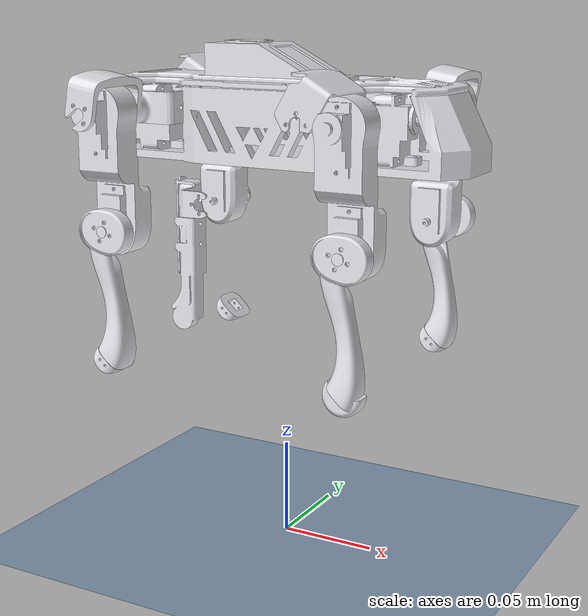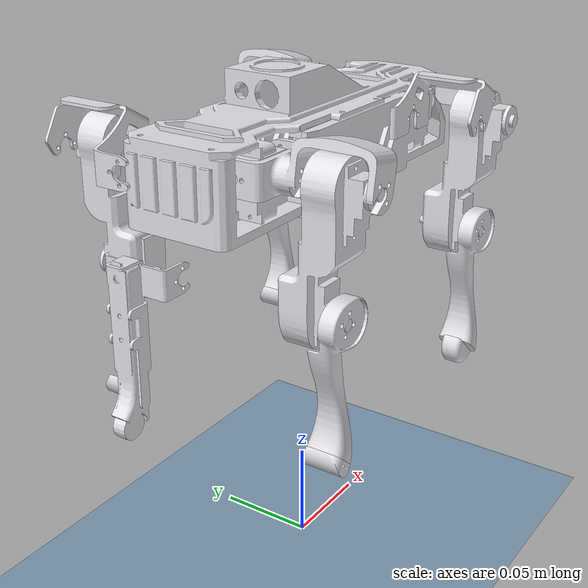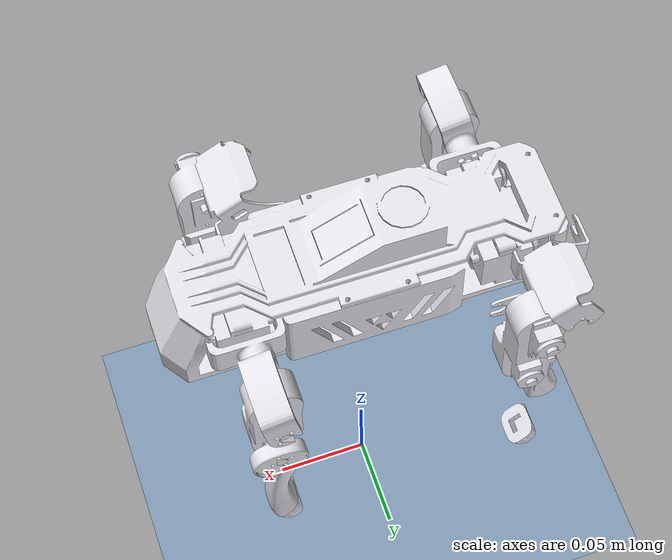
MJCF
<mujoco model="sdog">
  <compiler angle="radian" meshdir="../meshes"/>
  <size njmax="500" nconmax="100" />
  <option gravity='0 0 -9.806' iterations='50' solver='Newton' timestep='0.002'/>
  <default>
        <geom contype="1" conaffinity="1" friction="0.6 0.3 0.3" rgba="0.5 0.6 0.7 1" margin="0.001" group="0"/>
        <light castshadow="false" diffuse="1 1 1"/>
        <motor ctrlrange="-33.5 33.5" ctrllimited="true"/>
        <camera fovy="60"/>
        <joint damping="0.05" armature="0.01" frictionloss="0.05"/>
  </default>
  <asset>
    <mesh name="base" file="base.STL"/>
    <mesh name="body" file="body.STL"/>
    <mesh name="fr_hip" file="fr_hip.STL"/>
    <mesh name="fr_thigh" file="fr_thigh.STL"/>
    <mesh name="fr_calf" file="fr_calf.STL"/>
    <mesh name="fr_foot" file="fr_foot.STL"/>
    <mesh name="fl_hip" file="fl_hip.STL"/>
    <mesh name="fl_thigh" file="fl_thigh.STL"/>
    <mesh name="fl_calf" file="fl_calf.STL"/>
    <mesh name="fl_foot" file="fl_foot.STL"/>
    <mesh name="br_hip" file="br_hip.STL"/>
    <mesh name="br_thigh" file="br_thigh.STL"/>
    <mesh name="br_calf" file="br_calf.STL"/>
    <mesh name="br_foot" file="br_foot.STL"/>
    <mesh name="bl_hip" file="bl_hip.STL"/>
    <mesh name="bl_thigh" file="bl_thigh.STL"/>
    <mesh name="bl_calf" file="bl_calf.STL"/>
    <mesh name="bl_foot" file="bl_foot.STL"/>
    <texture type="skybox" builtin="gradient" rgb1=".3 .5 .7" rgb2="0 0 0" width="512" height="512"/>
    <texture name="grid" type="2d" builtin="checker" width="512" height="512" rgb1=".1 .2 .3" rgb2=".2 .3 .4"/>
    <material name="grid" texture="grid" texrepeat="1 1" texuniform="true" reflectance=".2"/>
  </asset>

  <worldbody>
    <geom name="floor" pos="0 0 0" size="0 0 0.05" type="plane" material="grid" condim="3"/>
    <light name="spotlight" mode="fixed" pos="0 0 3" dir="0 0 -1" diffuse=".8 .8 .8" specular=".3 .3 .3" cutoff="100" exponent="30"/>
    <light castshadow="false" directional="true" diffuse=".3 .3 .3" specular="0.3 0.3 0.3" pos="-1 -1 1" dir="1 1 -1"/>
    <light directional="true" diffuse=".3 .3 .3" specular="0.3 0.3 0.3" pos="1 -1 1" dir="-1 1 -1"/>
    <light castshadow="false" directional="true" diffuse=".3 .3 .3" specular="0.3 0.3 0.3" pos="0 1 1" dir="0 -1 -1"/>
    <body name="trunk" pos="0 0 0.23">
      <freejoint name="root"/>
      <geom type="mesh" rgba="0.89804 0.91765 0.92941 1" mesh="base"/>
      <geom type="mesh" rgba="0.8902 0.8902 0.91373 1" mesh="body"/>
      <body name="fr_hip" pos="0.062526 -0.02085 0">
        <inertial pos="0.0023257 -0.025249 0.0055137" quat="0.557125 0.417005 -0.429525 0.575523" mass="0.01059" diaginertia="4.59415e-06 4.13295e-06 1.2864e-06"/>
        <joint name="fr_hip_joint" pos="0 0 0" axis="1 0 0" range="-0.8 0.8" actuatorfrcrange="-0.45 0.45"/>
        <geom type="mesh" rgba="0.8902 0.8902 0.91373 1" mesh="fr_hip"/>
        <body name="fr_thigh" pos="0.00031911 -0.03686 0">
          <inertial pos="-5.894e-05 0.0027005 -0.028881" quat="0.993505 0.113762 0.000832863 -0.00225745" mass="0.045112" diaginertia="1.7194e-05 1.71342e-05 3.52919e-06"/>
          <joint name="fr_thigh_joint" pos="0 0 0" axis="0 1 0" range="-1 2" actuatorfrcrange="-0.45 0.45"/>
          <geom type="mesh" rgba="0.8902 0.8902 0.91373 1" mesh="fr_thigh"/>
          <body name="fr_calf" pos="-1.4535e-05 0 -0.059049">
            <inertial pos="0.000214756 -0.00127643 -0.0394026" quat="0.758783 0.0217934 -0.0312341 0.650229" mass="0.014489" diaginertia="9.26291e-06 9.11254e-06 6.36044e-07"/>
            <joint name="fr_calf_joint" pos="0 0 0" axis="0 1 0" range="-2.69 -0.5" actuatorfrcrange="-0.45 0.45"/>
            <geom type="mesh" rgba="0.8902 0.8902 0.91373 1" mesh="fr_calf"/>
            <geom pos="0 0 -0.065878" quat="1 0 0 0" type="mesh" rgba="0.8902 0.8902 0.91373 1" mesh="fr_foot"/>
          </body>
        </body>
      </body>
      <body name="fl_hip" pos="0.062526 0.020224 0">
        <inertial pos="0.00232573 0.025876 0.00551368" quat="0.417008 0.557126 -0.57552 0.429525" mass="0.0105904" diaginertia="4.59417e-06 4.13298e-06 1.28639e-06"/>
        <joint name="fl_hip_joint" pos="0 0 0" axis="1 0 0" range="-0.8 0.8" actuatorfrcrange="-0.45 0.45"/>
        <geom type="mesh" rgba="0.890196 0.890196 0.913725 1" mesh="fl_hip"/>
        <body name="fl_thigh" pos="0.00031911 0.037482 0">
          <inertial pos="-5.9763e-05 -0.0026948 -0.028882" quat="0.993498 -0.113681 0.00125127 0.00607789" mass="0.045114" diaginertia="1.7197e-05 1.71363e-05 3.53005e-06"/>
          <joint name="fl_thigh_joint" pos="0 0 0" axis="0 1 0" range="-1 2" actuatorfrcrange="-0.45 0.45"/>
          <geom type="mesh" rgba="0.8902 0.8902 0.91373 1" mesh="fl_thigh"/>
          <body name="fl_calf" pos="-1.4535e-05 0 -0.059049">
            <inertial pos="0.000214512 0.00128085 -0.0394066" quat="0.650178 -0.0312294 0.0218028 0.758827" mass="0.0144904" diaginertia="9.26265e-06 9.11247e-06 6.36453e-07"/>
            <joint name="fl_calf_joint" pos="0 0 0" axis="0 1 0" range="-2.69 -0.5" actuatorfrcrange="-0.45 0.45"/>
            <geom type="mesh" rgba="0.890196 0.890196 0.913725 1" mesh="fl_calf"/>
            <geom pos="-0.00030458 0 -0.065887" quat="1 0 0 0" type="mesh" rgba="0.890196 0.890196 0.913725 1" mesh="fl_foot"/>
          </body>
        </body>
      </body>
      <body name="br_hip" pos="-0.05616 -0.02085 0">
        <inertial pos="-0.00967871 -0.025876 0.00551365" quat="0.557124 0.417006 -0.429526 0.575522" mass="0.0105904" diaginertia="4.59417e-06 4.13299e-06 1.28639e-06"/>
        <joint name="br_hip_joint" pos="0 0 0" axis="1 0 0" range="-0.8 0.8" actuatorfrcrange="-0.45 0.45"/>
        <geom type="mesh" rgba="0.890196 0.890196 0.913725 1" mesh="br_hip"/>
        <body name="br_thigh" pos="-0.011685 -0.03686 0">
          <inertial pos="-5.894e-05 0.0020738 -0.028881" quat="0.993505 0.113762 0.000832863 -0.00225745" mass="0.045112" diaginertia="1.7194e-05 1.71342e-05 3.52919e-06"/>
          <joint name="br_thigh_joint" pos="0 0 0" axis="0 1 0" range="-1 2" actuatorfrcrange="-0.45 0.45"/>
          <geom type="mesh" rgba="0.8902 0.8902 0.91373 1" mesh="br_thigh"/>
          <body name="br_calf" pos="0 0 -0.059063">
            <inertial pos="0.000394005 -0.00190142 -0.039386" quat="0.758635 0.0202126 -0.0331094 0.65036" mass="0.0144888" diaginertia="9.26298e-06 9.11248e-06 6.36114e-07"/>
            <joint name="br_calf_joint" pos="0 0 0" axis="0 1 0" range="-2.69 -0.5" actuatorfrcrange="-0.45 0.45"/>
            <geom type="mesh" rgba="0.890196 0.890196 0.913725 1" mesh="br_calf"/>
            <geom pos="0 0 -0.065864" quat="1 0 0 0" type="mesh" rgba="0.890196 0.890196 0.913725 1" mesh="br_foot"/>
          </body>
        </body>
      </body>
      <body name="bl_hip" pos="-0.067842 0.02085 0">
        <inertial pos="0.00200326 0.025876 0.00551368" quat="0.417008 0.557126 -0.57552 0.429525" mass="0.0105904" diaginertia="4.59417e-06 4.13298e-06 1.28639e-06"/>
        <joint name="bl_hip_joint" pos="0 0 0" axis="1 0 0" range="-0.8 0.8" actuatorfrcrange="-0.45 0.45"/>
        <geom type="mesh" rgba="0.890196 0.890196 0.913725 1" mesh="bl_hip"/>
        <body name="bl_thigh" pos="0 0.036855 0">
          <inertial pos="-5.9763e-05 -0.0020681 -0.028882" quat="0.993498 -0.113681 0.00125127 0.00607789" mass="0.045114" diaginertia="1.7197e-05 1.71363e-05 3.53005e-06"/>
          <joint name="bl_thigh_joint" pos="0 0 0" axis="0 1 0" range="-1 2" actuatorfrcrange="-0.45 0.45"/>
          <geom type="mesh" rgba="0.8902 0.8902 0.91373 1" mesh="bl_thigh"/>
          <body name="bl_calf" pos="0 0 -0.059063">
            <inertial pos="0.000393776 0.00190583 -0.0393902" quat="0.65028 -0.0331044 0.0202238 0.758703" mass="0.0144904" diaginertia="9.26264e-06 9.1124e-06 6.36524e-07"/>
            <joint name="bl_calf_joint" pos="0 0 0" axis="0 1 0" range="-2.69 -0.5" actuatorfrcrange="-0.45 0.45"/>
            <geom type="mesh" rgba="0.890196 0.890196 0.913725 1" mesh="bl_calf"/>
            <geom pos="0 0 -0.065864" quat="1 0 0 0" type="mesh" rgba="0.890196 0.890196 0.913725 1" mesh="bl_foot"/>
          </body>
        </body>
      </body>
    </body>
  </worldbody>

  <actuator>
    <!-- FR -->
    <motor name="fr_hip" joint="fr_hip_joint" gear="1" ctrllimited="true" ctrlrange="-100 100"/>
    <motor name="fr_thigh" joint="fr_thigh_joint" gear="1" ctrllimited="true" ctrlrange="-100 100"/>
    <motor name="fr_calf" joint="fr_calf_joint" gear="1" ctrllimited="true" ctrlrange="-100 100"/>
    <!-- FL -->
    <motor name="fl_hip" joint="fl_hip_joint" gear="1" ctrllimited="true" ctrlrange="-100 100"/>
    <motor name="fl_thigh" joint="fl_thigh_joint" gear="1" ctrllimited="true" ctrlrange="-100 100"/>
    <motor name="fl_calf" joint="fl_calf_joint" gear="1" ctrllimited="true" ctrlrange="-100 100"/>
    <!-- BR -->
    <motor name="br_hip" joint="br_hip_joint" gear="1" ctrllimited="true" ctrlrange="-100 100"/>
    <motor name="br_thigh" joint="br_thigh_joint" gear="1" ctrllimited="true" ctrlrange="-100 100"/>
    <motor name="br_calf" joint="br_calf_joint" gear="1" ctrllimited="true" ctrlrange="-100 100"/>
    <!-- BL -->
    <motor name="bl_hip" joint="bl_hip_joint" gear="1" ctrllimited="true" ctrlrange="-100 100"/>
    <motor name="bl_thigh" joint="bl_thigh_joint" gear="1" ctrllimited="true" ctrlrange="-100 100"/>
    <motor name="bl_calf" joint="bl_calf_joint" gear="1" ctrllimited="true" ctrlrange="-100 100"/>
  </actuator>
  <sensor>
        <jointpos name="FL_hip_pos"     joint="fl_hip_joint"/>
        <jointpos name="FL_thigh_pos"   joint="fl_thigh_joint"/>
        <jointpos name="FL_calf_pos"    joint="fl_calf_joint"/>
        <jointpos name="FR_hip_pos"     joint="fr_hip_joint"/>
        <jointpos name="FR_thigh_pos"   joint="fr_thigh_joint"/>
        <jointpos name="FR_calf_pos"    joint="fr_calf_joint"/>
        <jointpos name="BL_hip_pos"     joint="bl_hip_joint"/>
        <jointpos name="BL_thigh_pos"   joint="bl_thigh_joint"/>
        <jointpos name="BL_calf_pos"    joint="bl_calf_joint"/>
        <jointpos name="BR_hip_pos"     joint="br_hip_joint"/>
        <jointpos name="BR_thigh_pos"   joint="br_thigh_joint"/>
        <jointpos name="BR_calf_pos"    joint="br_calf_joint" />

        <jointvel name="FL_hip_vel"     joint="fl_hip_joint"/>
        <jointvel name="FL_thigh_vel"   joint="fl_thigh_joint"/>
        <jointvel name="FL_calf_vel"    joint="fl_calf_joint"/>
        <jointvel name="FR_hip_vel"     joint="fr_hip_joint"/>
        <jointvel name="FR_thigh_vel"   joint="fr_thigh_joint"/>
        <jointvel name="FR_calf_vel"    joint="fr_calf_joint"/>
        <jointvel name="BL_hip_vel"     joint="bl_hip_joint"/>
        <jointvel name="BL_thigh_vel"   joint="bl_thigh_joint"/>
        <jointvel name="BL_calf_vel"    joint="bl_calf_joint"/>
        <jointvel name="BR_hip_vel"     joint="br_hip_joint"/>
        <jointvel name="BR_thigh_vel"   joint="br_thigh_joint"/>
        <jointvel name="BR_calf_vel"    joint="br_calf_joint"/>
    </sensor>
</mujoco>
